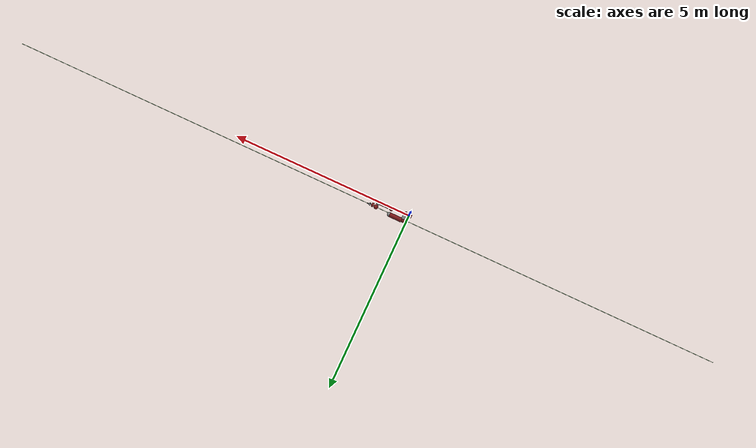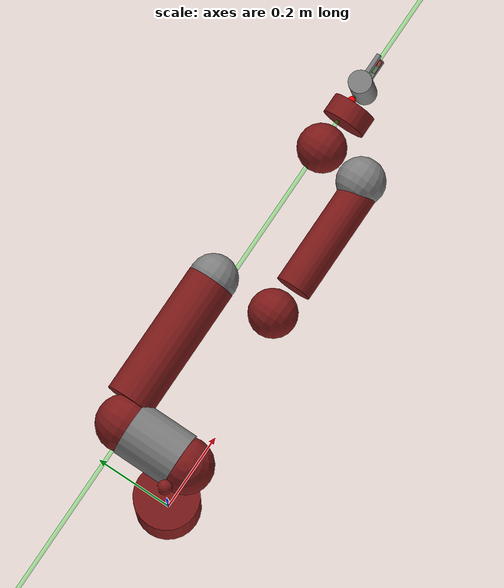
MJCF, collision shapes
<mujoco model="sawyer">
  <actuator>
    <motor ctrllimited="true" ctrlrange="-80.0 80.0" joint="right_j0" name="torq_right_j0" />
    <motor ctrllimited="true" ctrlrange="-80.0 80.0" joint="right_j1" name="torq_right_j1" />
    <motor ctrllimited="true" ctrlrange="-40.0 40.0" joint="right_j2" name="torq_right_j2" />
    <motor ctrllimited="true" ctrlrange="-40.0 40.0" joint="right_j3" name="torq_right_j3" />
    <motor ctrllimited="true" ctrlrange="-9.0 9.0" joint="right_j4" name="torq_right_j4" />
    <motor ctrllimited="true" ctrlrange="-9.0 9.0" joint="right_j5" name="torq_right_j5" />
    <motor ctrllimited="true" ctrlrange="-9.0 9.0" joint="right_j6" name="torq_right_j6" />
    <position ctrllimited="true" ctrlrange="-0.020833 0.0115" joint="r_finger_joint" kp="1000" name="gripper_r_finger_joint" forcelimited="true" forcerange="-20 20" />
    <position ctrllimited="true" ctrlrange="-0.0115 0.020833" joint="l_finger_joint" kp="1000" name="gripper_l_finger_joint" forcelimited="true" forcerange="-20 20" />
  </actuator>
  <asset>
    <material name="Mtl1.017" specular="0.5" shininess="0.225" rgba="1.000000 0.000000 0.000000 1.000000" />
    <material name="Mtl2.017" specular="0.5" shininess="0.225" rgba="0.286275 0.286275 0.286275 1.000000" />
    <mesh name="base_0" file="meshes/arm/base_0.obj" />
    <mesh name="base_1" file="meshes/arm/base_1.obj" />
    <material name="Mtl1" specular="0.5" shininess="0.225" rgba="1.000000 0.000000 0.000000 1.000000" />
    <material name="Mtl2" specular="0.5" shininess="0.225" rgba="0.000000 0.000000 0.000000 1.000000" />
    <material name="Mtl4" specular="0.5" shininess="0.225" rgba="1.000000 1.000000 1.000000 1.000000" />
    <material name="Mtl5" specular="0.5" shininess="0.225" rgba="0.870588 0.309804 0.086275 1.000000" />
    <material name="Mtl6" specular="0.5" shininess="0.225" rgba="0.286275 0.286275 0.286275 1.000000" />
    <material name="Mtl7" specular="0.5" shininess="0.225" rgba="0.698039 0.698039 0.698039 1.000000" />
    <material name="Mtl8" specular="0.5" shininess="0.225" rgba="0.792157 0.819608 0.929412 1.000000" />
    <material name="Mtl9" specular="0.5" shininess="0.225" rgba="0.250980 0.250980 0.250980 1.000000" />
    <material name="Mtla" specular="0.5" shininess="0.225" rgba="0.000000 0.000000 1.000000 1.000000" />
    <material name="Mtlb" specular="0.5" shininess="0.225" rgba="0.290196 0.290196 0.290196 1.000000" />
    <mesh name="head_0" file="meshes/arm/head_0.obj" />
    <mesh name="head_1" file="meshes/arm/head_1.obj" />
    <mesh name="head_2" file="meshes/arm/head_2.obj" />
    <mesh name="head_3" file="meshes/arm/head_3.obj" />
    <mesh name="head_4" file="meshes/arm/head_4.obj" />
    <mesh name="head_5" file="meshes/arm/head_5.obj" />
    <mesh name="head_6" file="meshes/arm/head_6.obj" />
    <mesh name="head_7" file="meshes/arm/head_7.obj" />
    <mesh name="head_8" file="meshes/arm/head_8.obj" />
    <mesh name="head_9" file="meshes/arm/head_9.obj" />
    <material name="Mtl1.014" specular="0.5" shininess="0.225" rgba="0.286275 0.286275 0.286275 1.000000" />
    <material name="Mtl2.014" specular="0.5" shininess="0.225" rgba="1.000000 1.000000 1.000000 1.000000" />
    <material name="Mtl3.013" specular="0.5" shininess="0.225" rgba="0.168627 0.152941 0.141176 1.000000" />
    <material name="Mtl4.012" specular="0.5" shininess="0.225" rgba="1.000000 0.403922 0.121569 1.000000" />
    <material name="Mtl5.010" specular="0.5" shininess="0.225" rgba="1.000000 0.000000 0.000000 1.000000" />
    <material name="Mtl6.008" specular="0.5" shininess="0.225" rgba="0.792157 0.819608 0.929412 1.000000" />
    <material name="Mtl7.007" specular="0.5" shininess="0.225" rgba="0.250980 0.250980 0.250980 1.000000" />
    <mesh name="l0_0" file="meshes/arm/l0_0.obj" />
    <mesh name="l0_1" file="meshes/arm/l0_1.obj" />
    <mesh name="l0_2" file="meshes/arm/l0_2.obj" />
    <mesh name="l0_3" file="meshes/arm/l0_3.obj" />
    <mesh name="l0_4" file="meshes/arm/l0_4.obj" />
    <mesh name="l0_5" file="meshes/arm/l0_5.obj" />
    <mesh name="l0_6" file="meshes/arm/l0_6.obj" />
    <material name="Mtl1.004" specular="0.5" shininess="0.225" rgba="1.000000 1.000000 1.000000 1.000000" />
    <material name="Mtl2.004" specular="0.5" shininess="0.225" rgba="1.000000 0.000000 0.000000 1.000000" />
    <material name="Mtl3.003" specular="0.5" shininess="0.225" rgba="0.286275 0.286275 0.286275 1.000000" />
    <mesh name="l1_0" file="meshes/arm/l1_0.obj" />
    <mesh name="l1_1" file="meshes/arm/l1_1.obj" />
    <mesh name="l1_2" file="meshes/arm/l1_2.obj" />
    <material name="Mtl1.005" specular="0.5" shininess="0.225" rgba="1.000000 0.000000 0.000000 1.000000" />
    <material name="Mtl2.005" specular="0.5" shininess="0.225" rgba="0.286275 0.286275 0.286275 1.000000" />
    <material name="Mtl3.004" specular="0.5" shininess="0.225" rgba="1.000000 1.000000 1.000000 1.000000" />
    <material name="Mtl4.003" specular="0.5" shininess="0.225" rgba="0.792157 0.819608 0.929412 1.000000" />
    <material name="Mtl5.003" specular="0.5" shininess="0.225" rgba="0.105882 0.105882 0.105882 1.000000" />
    <mesh name="l2_0" file="meshes/arm/l2_0.obj" />
    <mesh name="l2_1" file="meshes/arm/l2_1.obj" />
    <mesh name="l2_2" file="meshes/arm/l2_2.obj" />
    <mesh name="l2_3" file="meshes/arm/l2_3.obj" />
    <mesh name="l2_4" file="meshes/arm/l2_4.obj" />
    <material name="Mtl1.007" specular="0.5" shininess="0.225" rgba="0.290196 0.290196 0.290196 1.000000" />
    <material name="Mtl2.007" specular="0.5" shininess="0.225" rgba="1.000000 1.000000 1.000000 1.000000" />
    <material name="Mtl3.006" specular="0.5" shininess="0.225" rgba="1.000000 0.000000 0.000000 1.000000" />
    <material name="Mtl4.005" specular="0.5" shininess="0.225" rgba="0.792157 0.819608 0.929412 1.000000" />
    <mesh name="l3_0" file="meshes/arm/l3_0.obj" />
    <mesh name="l3_1" file="meshes/arm/l3_1.obj" />
    <mesh name="l3_2" file="meshes/arm/l3_2.obj" />
    <mesh name="l3_3" file="meshes/arm/l3_3.obj" />
    <material name="Mtl1.010" specular="0.5" shininess="0.225" rgba="0.286275 0.286275 0.286275 1.000000" />
    <material name="Mtl2.010" specular="0.5" shininess="0.225" rgba="1.000000 0.000000 0.000000 1.000000" />
    <material name="Mtl3.009" specular="0.5" shininess="0.225" rgba="0.000000 0.000000 0.000000 1.000000" />
    <material name="Mtl4.008" specular="0.5" shininess="0.225" rgba="0.792157 0.819608 0.929412 1.000000" />
    <material name="Mtl5.006" specular="0.5" shininess="0.225" rgba="1.000000 1.000000 1.000000 1.000000" />
    <material name="Mtl6.004" specular="0.5" shininess="0.225" rgba="0.749020 0.749020 0.749020 1.000000" />
    <material name="Mtl7.004" specular="0.5" shininess="0.225" rgba="0.290196 0.290196 0.290196 1.000000" />
    <material name="Mtl8.002" specular="0.5" shininess="0.225" rgba="0.250980 0.250980 0.250980 1.000000" />
    <mesh name="l4_0" file="meshes/arm/l4_0.obj" />
    <mesh name="l4_1" file="meshes/arm/l4_1.obj" />
    <mesh name="l4_2" file="meshes/arm/l4_2.obj" />
    <mesh name="l4_3" file="meshes/arm/l4_3.obj" />
    <mesh name="l4_4" file="meshes/arm/l4_4.obj" />
    <mesh name="l4_5" file="meshes/arm/l4_5.obj" />
    <mesh name="l4_6" file="meshes/arm/l4_6.obj" />
    <mesh name="l4_7" file="meshes/arm/l4_7.obj" />
    <material name="Mtl1_001" specular="0.5" shininess="0.225" rgba="1.000000 0.000000 0.000000 1.000000" />
    <material name="Mtl2_001" specular="0.5" shininess="0.225" rgba="1.000000 1.000000 1.000000 1.000000" />
    <material name="Mtl3_001" specular="0.5" shininess="0.225" rgba="0.286275 0.286275 0.286275 1.000000" />
    <material name="Mtl4_001" specular="0.5" shininess="0.225" rgba="0.866667 0.905882 1.000000 1.000000" />
    <material name="Mtl5_001" specular="0.5" shininess="0.225" rgba="0.501961 0.501961 0.501961 1.000000" />
    <mesh name="l5_0" file="meshes/arm/l5_0.obj" />
    <mesh name="l5_1" file="meshes/arm/l5_1.obj" />
    <mesh name="l5_2" file="meshes/arm/l5_2.obj" />
    <mesh name="l5_3" file="meshes/arm/l5_3.obj" />
    <mesh name="l5_4" file="meshes/arm/l5_4.obj" />
    <material name="Mtl1.012" specular="0.5" shininess="0.225" rgba="0.298039 0.298039 0.298039 1.000000" />
    <material name="Mtl2.012" specular="0.5" shininess="0.225" rgba="0.282353 0.282353 0.282353 1.000000" />
    <material name="Mtl3.011" specular="0.5" shininess="0.225" rgba="0.286275 0.286275 0.286275 1.000000" />
    <material name="Mtl4.010" specular="0.5" shininess="0.225" rgba="1.000000 0.000000 0.000000 1.000000" />
    <material name="Mtl5.008" specular="0.5" shininess="0.225" rgba="1.000000 1.000000 1.000000 1.000000" />
    <material name="Mtl6.006" specular="0.5" shininess="0.225" rgba="1.000000 0.403922 0.121569 1.000000" />
    <mesh name="l6_0" file="meshes/arm/l6_0.obj" />
    <mesh name="l6_1" file="meshes/arm/l6_1.obj" />
    <mesh name="l6_2" file="meshes/arm/l6_2.obj" />
    <mesh name="l6_3" file="meshes/arm/l6_3.obj" />
    <mesh name="l6_4" file="meshes/arm/l6_4.obj" />
    <mesh name="l6_5" file="meshes/arm/l6_5.obj" />
    <mesh name="standard_narrow" file="meshes/gripper/standard_narrow.stl" />
    <mesh name="half_round_tip" file="meshes/gripper/half_round_tip.stl" />
    <material name="Material_001.001" specular="0.5" shininess="0.25" rgba="0.640000 0.000000 0.000000 1.000000" />
    <material name="Material_002" specular="0.5" shininess="0.25" rgba="0.640000 0.640000 0.640000 1.000000" />
    <mesh name="electric_gripper_base_0" file="meshes/gripper/electric_gripper_base_0.obj" />
    <mesh name="electric_gripper_base_1" file="meshes/gripper/electric_gripper_base_1.obj" />
    <material name="finger_mat" specular="0.5" shininess="0.25" rgba="0.000000 0.000000 0.000000 1.000000" />
    <material name="Material_001" specular="0.5" shininess="0.25" rgba="0.001651 0.001651 0.001651 1.000000" />
    <mesh name="connector_plate" file="meshes/gripper/connector_plate.obj" />
  </asset>
  <worldbody>
    <body name="base" pos="0 0 0">
      <camera mode="fixed" name="robotview" pos="1.0 0 0.4" quat="0.653 0.271 0.271 0.653" />
      <inertial diaginertia="0 0 0" mass="0" pos="0 0 0" />
      <body name="right_arm_base_link" pos="0 0 0">
        <inertial diaginertia="0.00740351 0.00681776 0.00672942" mass="2.0687" pos="-0.0006241 -2.8025e-05 0.065404" quat="-0.209285 0.674441 0.227335 0.670558" />
        <geom mesh="base_0" material="Mtl2.017" type="mesh" contype="0" conaffinity="0" group="1" />
        <geom mesh="base_1" material="Mtl1.017" type="mesh" contype="0" conaffinity="0" group="1" />
        <geom pos="0 0 0.12" rgba="0.5 0.1 0.1 1" size="0.08 0.12" type="cylinder" name="base_col" />
        <body name="right_l0" pos="0 0 0.08">
          <inertial diaginertia="0.0651588 0.0510944 0.0186218" mass="5.3213" pos="0.024366 0.010969 0.14363" quat="0.894823 0.00899958 -0.170275 0.412573" />
          <joint axis="0 0 1" limited="true" name="right_j0" pos="0 0 0" range="-3.0503 3.0503" />
          <geom mesh="l0_0" material="Mtl7.007" type="mesh" contype="0" conaffinity="0" group="1" />
          <geom mesh="l0_1" material="Mtl6.008" type="mesh" contype="0" conaffinity="0" group="1" />
          <geom mesh="l0_2" material="Mtl5.010" type="mesh" contype="0" conaffinity="0" group="1" />
          <geom mesh="l0_3" material="Mtl4.012" type="mesh" contype="0" conaffinity="0" group="1" />
          <geom mesh="l0_4" material="Mtl3.013" type="mesh" contype="0" conaffinity="0" group="1" />
          <geom mesh="l0_5" material="Mtl2.014" type="mesh" contype="0" conaffinity="0" group="1" />
          <geom mesh="l0_6" material="Mtl1.014" type="mesh" contype="0" conaffinity="0" group="1" />
          <geom pos="0.08 0 0.23" rgba="0.5 0.1 0.1 1" size="0.07" name="link0_collision" />
          <body name="head" pos="0 0 0.2965">
            <inertial diaginertia="0.0118334 0.00827089 0.00496574" mass="1.5795" pos="0.0053207 -2.6549e-05 0.1021" quat="0.999993 7.08405e-05 -0.00359857 -0.000626247" />
            <geom mesh="head_0" material="Mtlb" type="mesh" contype="0" conaffinity="0" group="1" />
            <geom mesh="head_1" material="Mtla" type="mesh" contype="0" conaffinity="0" group="1" />
            <geom mesh="head_2" material="Mtl8" type="mesh" contype="0" conaffinity="0" group="1" />
            <geom mesh="head_3" material="Mtl9" type="mesh" contype="0" conaffinity="0" group="1" />
            <geom mesh="head_4" material="Mtl7" type="mesh" contype="0" conaffinity="0" group="1" />
            <geom mesh="head_5" material="Mtl6" type="mesh" contype="0" conaffinity="0" group="1" />
            <geom mesh="head_6" material="Mtl4" type="mesh" contype="0" conaffinity="0" group="1" />
            <geom mesh="head_7" material="Mtl2" type="mesh" contype="0" conaffinity="0" group="1" />
            <geom mesh="head_8" material="Mtl1" type="mesh" contype="0" conaffinity="0" group="1" />
            <geom mesh="head_9" material="Mtl5" type="mesh" contype="0" conaffinity="0" group="1" />
            <geom pos="0 0 0.08" rgba="0.5 0.1 0.1 1" size="0.018" name="head_collision" />
            <body name="screen" pos="0.03 0 0.105" quat="0.5 0.5 0.5 0.5">
              <inertial diaginertia="1e-08 1e-08 1e-08" mass="0.0001" pos="0 0 0" />
              <geom rgba="0.2 0.2 0.2 1" size="0.001" name="screen_collision" />
            </body>
            <body name="head_camera" pos="0.0228027 0 0.216572" quat="0.342813 -0.618449 0.618449 -0.342813">
              <inertial diaginertia="0 0 0" mass="0" pos="0.0228027 0 0.216572" quat="0.342813 -0.618449 0.618449 -0.342813" />
            </body>
          </body>
          <body name="right_torso_itb" pos="-0.055 0 0.22" quat="0.707107 0 -0.707107 0">
            <inertial diaginertia="1e-08 1e-08 1e-08" mass="0.0001" pos="0 0 0" />
          </body>
          <body name="right_l1" pos="0.081 0.05 0.237" quat="0.5 -0.5 0.5 0.5">
            <inertial diaginertia="0.0224339 0.0221624 0.0097097" mass="4.505" pos="-0.0030849 -0.026811 0.092521" quat="0.424888 0.891987 0.132364 -0.0794296" />
            <joint axis="0 0 1" limited="true" name="right_j1" pos="0 0 0" range="-3.8095 2.2736" />
            <geom mesh="l1_0" material="Mtl3.003" type="mesh" contype="0" conaffinity="0" group="1" />
            <geom mesh="l1_1" material="Mtl2.004" type="mesh" contype="0" conaffinity="0" group="1" />
            <geom mesh="l1_2" material="Mtl1.004" type="mesh" contype="0" conaffinity="0" group="1" />
            <geom pos="0 0 0.1225" rgba="0.5 0.1 0.1 1" size="0.07" name="link1_collision" />
            <body name="right_l2" pos="0 -0.14 0.1425" quat="0.707107 0.707107 0 0">
              <inertial diaginertia="0.0257928 0.025506 0.00292515" mass="1.745" pos="-0.00016044 -0.014967 0.13582" quat="0.707831 -0.0524761 0.0516007 0.702537" />
              <joint axis="0 0 1" limited="true" name="right_j2" pos="0 0 0" range="-3.0426 3.0426" />
              <geom mesh="l2_0" material="Mtl4.003" type="mesh" contype="0" conaffinity="0" group="1" />
              <geom mesh="l2_1" material="Mtl5.003" type="mesh" contype="0" conaffinity="0" group="1" />
              <geom mesh="l2_2" material="Mtl3.004" type="mesh" contype="0" conaffinity="0" group="1" />
              <geom mesh="l2_3" material="Mtl2.005" type="mesh" contype="0" conaffinity="0" group="1" />
              <geom mesh="l2_4" material="Mtl1.005" type="mesh" contype="0" conaffinity="0" group="1" />
              <geom pos="0 0 0.08" rgba="0.5 0.1 0.1 1" size="0.06 0.17" type="cylinder" name="link2_collision" />
              <body name="right_l3" pos="0 -0.042 0.26" quat="0.707107 -0.707107 0 0">
                <inertial diaginertia="0.0102404 0.0096997 0.00369622" mass="2.5097" pos="-0.0048135 -0.0281 -0.084154" quat="0.902999 0.385391 -0.0880901 0.168247" />
                <joint axis="0 0 1" limited="true" name="right_j3" pos="0 0 0" range="-3.0439 3.0439" />
                <geom mesh="l3_0" material="Mtl4.005" type="mesh" contype="0" conaffinity="0" group="1" />
                <geom mesh="l3_1" material="Mtl3.006" type="mesh" contype="0" conaffinity="0" group="1" />
                <geom mesh="l3_2" material="Mtl2.007" type="mesh" contype="0" conaffinity="0" group="1" />
                <geom mesh="l3_3" material="Mtl1.007" type="mesh" contype="0" conaffinity="0" group="1" />
                <geom pos="0 -0.01 -0.12" rgba="0.5 0.1 0.1 1" size="0.06" name="link3_collision" />
                <body name="right_l4" pos="0 -0.125 -0.1265" quat="0.707107 0.707107 0 0">
                  <inertial diaginertia="0.0136549 0.0135493 0.00127353" mass="1.1136" pos="-0.0018844 0.0069001 0.1341" quat="0.803612 0.031257 -0.0298334 0.593582" />
                  <joint axis="0 0 1" limited="true" name="right_j4" pos="0 0 0" range="-2.9761 2.9761" />
                  <geom mesh="l4_0" material="Mtl8.002" type="mesh" contype="0" conaffinity="0" group="1" />
                  <geom mesh="l4_1" material="Mtl7.004" type="mesh" contype="0" conaffinity="0" group="1" />
                  <geom mesh="l4_2" material="Mtl6.004" type="mesh" contype="0" conaffinity="0" group="1" />
                  <geom mesh="l4_3" material="Mtl5.006" type="mesh" contype="0" conaffinity="0" group="1" />
                  <geom mesh="l4_4" material="Mtl4.008" type="mesh" contype="0" conaffinity="0" group="1" />
                  <geom mesh="l4_5" material="Mtl3.009" type="mesh" contype="0" conaffinity="0" group="1" />
                  <geom mesh="l4_6" material="Mtl2.010" type="mesh" contype="0" conaffinity="0" group="1" />
                  <geom mesh="l4_7" material="Mtl1.010" type="mesh" contype="0" conaffinity="0" group="1" />
                  <geom pos="0 0 0.11" rgba="0.5 0.1 0.1 1" size="0.045 0.15" type="cylinder" name="link4_collision" />
                  <body name="right_arm_itb" pos="-0.055 0 0.075" quat="0.707107 0 -0.707107 0">
                    <inertial diaginertia="1e-08 1e-08 1e-08" mass="0.0001" pos="0 0 0" />
                  </body>
                  <body name="right_l5" pos="0 0.031 0.275" quat="0.707107 -0.707107 0 0">
                    <inertial diaginertia="0.00474131 0.00422857 0.00190672" mass="1.5625" pos="0.0061133 -0.023697 0.076416" quat="0.404076 0.9135 0.0473125 0.00158335" />
                    <joint axis="0 0 1" limited="true" name="right_j5" pos="0 0 0" range="-2.9761 2.9761" damping="0.2" />
                    <geom mesh="l5_0" material="Mtl5_001" type="mesh" contype="0" conaffinity="0" group="1" />
                    <geom mesh="l5_1" material="Mtl4_001" type="mesh" contype="0" conaffinity="0" group="1" />
                    <geom mesh="l5_2" material="Mtl2_001" type="mesh" contype="0" conaffinity="0" group="1" />
                    <geom mesh="l5_3" material="Mtl1_001" type="mesh" contype="0" conaffinity="0" group="1" />
                    <geom mesh="l5_4" material="Mtl3_001" type="mesh" contype="0" conaffinity="0" group="1" />
                    <geom pos="0 0 0.1" rgba="0.5 0.1 0.1 1" size="0.06" name="link5_collision" />
                    <body name="right_hand_camera" pos="0.039552 -0.033 0.0695" quat="0.707107 0 0.707107 0">
                      <inertial diaginertia="0 0 0" mass="0" pos="0.039552 -0.033 0.0695" quat="0.707107 0 0.707107 0" />
                    </body>
                    <body name="right_wrist" pos="0 0 0.10541" quat="0.707107 0.707107 0 0">
                      <inertial diaginertia="0 0 0" mass="0" pos="0 0 0.10541" quat="0.707107 0.707107 0 0" />
                    </body>
                    <body name="right_l6" pos="0 -0.11 0.1053" quat="0.0616248 0.06163 -0.704416 0.704416">
                      <inertial diaginertia="0.000360258 0.000311068 0.000214974" mass="0.3292" pos="-8.0726e-06 0.0085838 -0.0049566" quat="0.479044 0.515636 -0.513069 0.491322" />
                      <joint axis="0 0 1" limited="true" name="right_j6" pos="0 0 0" range="-4.7124 4.7124" damping="0.1" />
                      <geom mesh="l6_0" material="Mtl6.006" type="mesh" contype="0" conaffinity="0" group="1" />
                      <geom mesh="l6_1" material="Mtl5.008" type="mesh" contype="0" conaffinity="0" group="1" />
                      <geom mesh="l6_2" material="Mtl4.010" type="mesh" contype="0" conaffinity="0" group="1" />
                      <geom mesh="l6_3" material="Mtl3.011" type="mesh" contype="0" conaffinity="0" group="1" />
                      <geom mesh="l6_4" material="Mtl2.012" type="mesh" contype="0" conaffinity="0" group="1" />
                      <geom mesh="l6_5" material="Mtl1.012" type="mesh" contype="0" conaffinity="0" group="1" />
                      <geom pos="0 0.015 -0.01" rgba="0.5 0.1 0.1 1" size="0.055 0.025" type="cylinder" name="link6_collision" />
                      <body name="right_hand" pos="0 0 0.024" quat="0.707105 0 0 0.707108">
                        <camera mode="fixed" name="eye_in_hand" pos="0.05 0 0" quat="0 0.707108 0.707108 0" fovy="75" />
                        <body name="gripper_base" pos="0 0 0">
                          <site name="ft_frame" pos="0 0 0" size="0.01 0.01 0.01" rgba="1 0 0 1" type="sphere" group="1" />
                          <inertial pos="0 0 0" quat="-0.5 0.5 0.5 0.5" mass="0.3" diaginertia="3e-08 2e-08 2e-08" />
                          <geom material="Material_001" mesh="connector_plate" pos="0 0 0.0018" quat="0.7071068 0 0 0.7071068" class="visual" name="connector_visual" />
                          <geom mesh="electric_gripper_base_0" material="Material_002" pos="0 0 0.0194" quat="0.7071068 0 0 0.7071068" class="visual" name="hand_visual" />
                          <geom mesh="electric_gripper_base_1" material="Material_001.001" pos="0 0 0.0194" quat="0.7071068 0 0 0.7071068" class="visual" name="housing_visual" />
                          <geom size="0.029 0.05" quat="0 0 0.707107 0.707107" type="cylinder" group="0" name="gripper_base_col" pos="0.004 0.0 0.04" />
                          <body name="eef" pos="0 0 0.109" quat="0.707105 0 0 -0.707105">
                            <site name="grip_site" pos="0 0 0" size="0.01 0.01 0.01" rgba="1 0 0 0.5" type="sphere" group="1" />
                            <site name="ee_x" pos="0.1 0 0" size="0.005 .1" quat="0.707105  0 0.707108 0 " rgba="1 0 0 0" type="cylinder" group="1" />
                            <site name="ee_y" pos="0 0.1 0" size="0.005 .1" quat="0.707105 0.707108 0 0" rgba="0 1 0 0" type="cylinder" group="1" />
                            <site name="ee_z" pos="0 0 0.1" size="0.005 .1" quat="1 0 0 0" rgba="0 0 1 0" type="cylinder" group="1" />
                            <site name="grip_site_cylinder" pos="0 0 0" size="0.005 10" rgba="0 1 0 0.3" type="cylinder" group="1" />
                          </body>
                          <body name="l_finger" pos="0 0.01 0.0444">
                            <inertial pos="0 0 0" quat="0 0 0 -1" mass="0.02" diaginertia="0.01 0.01 0.01" />
                            <joint name="l_finger_joint" pos="0 0 0" axis="0 1 0" type="slide" limited="true" range="-0.0115 0.020833" damping="100" armature="1.0" frictionloss="1.0" />
                            <geom name="l_finger" quat="0 0 0 -1" type="mesh" contype="0" conaffinity="0" group="1" mesh="standard_narrow" material="finger_mat" />
                            <geom size="0.005 0.00675 0.0375" pos="0 0.01725 0.04" quat="0 0 0 -1" type="box" group="0" conaffinity="1" contype="0" name="l_finger_g0" friction="0 0 0" />
                            <geom size="0.005 0.025 0.0085" pos="-0.005 -0.003 0.0083" quat="0 0 0 -1" type="box" group="0" conaffinity="1" contype="0" name="l_finger_g1" friction="0 0 0" />
                            <body name="l_finger_tip" pos="0 0.01725 0.075">
                              <inertial pos="0 0 0" quat="0 0 0 1" mass="0.01" diaginertia="0.01 0.01 0.01" />
                              <geom name="l_fingertip_g0_vis" quat="0 0 0 1" type="mesh" contype="0" conaffinity="0" group="1" mesh="half_round_tip" material="finger_mat" />
                              <geom size="0.004 0.004 0.0185" pos="0 -0.0045 -0.015" quat="0 0 0 -1" type="box" group="0" conaffinity="1" contype="0" name="l_fingertip_g0" friction="0 0 0" />
                              <geom size="0.0035 0.004 0.0165" pos="0 -0.0047 -0.017" type="box" conaffinity="1" contype="0" name="l_fingerpad_g0" friction="0 0 0" />
                            </body>
                          </body>
                          <body name="r_finger" pos="0 -0.01 0.0444">
                            <inertial pos="0 0 0" mass="0.02" diaginertia="0.01 0.01 0.01" />
                            <joint name="r_finger_joint" pos="0 0 0" axis="0 1 0" type="slide" limited="true" range="-0.020833 0.0115" damping="100" armature="1.0" frictionloss="1.0" />
                            <geom name="r_finger" type="mesh" contype="0" conaffinity="0" group="1" mesh="standard_narrow" material="finger_mat" />
                            <geom size="0.005 0.00675 0.0375" pos="0 -0.01725 0.04" type="box" group="0" conaffinity="1" contype="0" name="r_finger_g0" friction="0 0 0" />
                            <geom size="0.005 0.025 0.0085" pos="0.005 0.003 0.0083" type="box" group="0" conaffinity="1" contype="0" name="r_finger_g1" friction="0 0 0" />
                            <body name="r_finger_tip" pos="0 -0.01725 0.075">
                              <inertial pos="0 0 0" mass="0.01" diaginertia="0.01 0.01 0.01" />
                              <geom name="r_fingertip_g0_vis" type="mesh" contype="0" conaffinity="0" group="1" mesh="half_round_tip" material="finger_mat" />
                              <geom size="0.004 0.004 0.0185" pos="0 0.0045 -0.015" type="box" group="0" conaffinity="1" contype="0" name="r_fingertip_g0" friction="0 0 0" />
                              <geom size="0.0035 0.004 0.0165" pos="0 0.0047 -0.017" type="box" conaffinity="1" contype="0" name="r_fingerpad_g0" friction="0 0 0" />
                            </body>
                          </body>
                          <body name="actor_frame" />
                          <body name="left_base_anchor" pos="0 0.048083 0.0469" />
                          <body name="right_base_anchor" pos="0 -0.048083 0.0469" />
                        </body>
                      </body>
                    </body>
                  </body>
                  <body name="right_l4_2" pos="0 0 0">
                    <inertial diaginertia="1e-08 1e-08 1e-08" mass="1e-08" pos="1e-08 1e-08 1e-08" quat="0.820473 0.339851 -0.17592 0.424708" />
                    <geom pos="0 0.01 0.26" size="0.06" name="right_l4_2" />
                  </body>
                </body>
              </body>
              <body name="right_l2_2" pos="0 0 0">
                <inertial diaginertia="1e-08 1e-08 1e-08" mass="1e-08" pos="1e-08 1e-08 1e-08" quat="0.820473 0.339851 -0.17592 0.424708" />
                <geom pos="0 0 0.26" size="0.06" name="right_l2_2" />
              </body>
            </body>
            <body name="right_l1_2" pos="0 0 0">
              <inertial diaginertia="1e-08 1e-08 1e-08" mass="1e-08" pos="1e-08 1e-08 1e-08" quat="0.820473 0.339851 -0.17592 0.424708" />
              <geom pos="0 0 0.035" size="0.07 0.07" type="cylinder" name="right_l1_2" />
            </body>
          </body>
        </body>
      </body>
    </body>
  </worldbody>
  <compiler angle="radian" />
  <default>
    <default class="visual">
      <geom contype="0" conaffinity="0" group="1" type="mesh" />
    </default>
  </default>
  <sensor>
    <force name="force_ee" site="ft_frame" />
    <torque name="torque_ee" site="ft_frame" />
  </sensor>
  <contact>
    <exclude body1="gripper_base" body2="l_finger" />
    <exclude body1="gripper_base" body2="r_finger" />
  </contact>
</mujoco>
